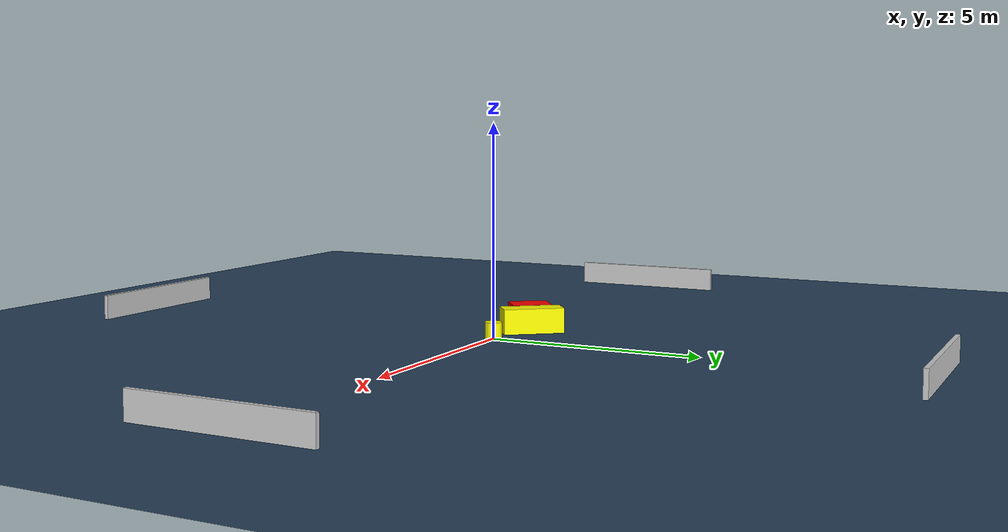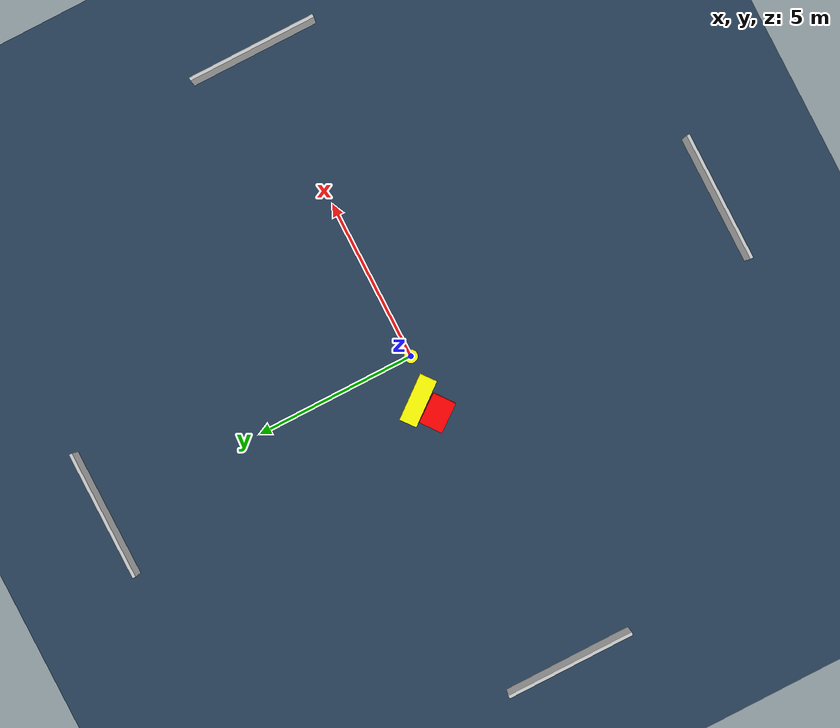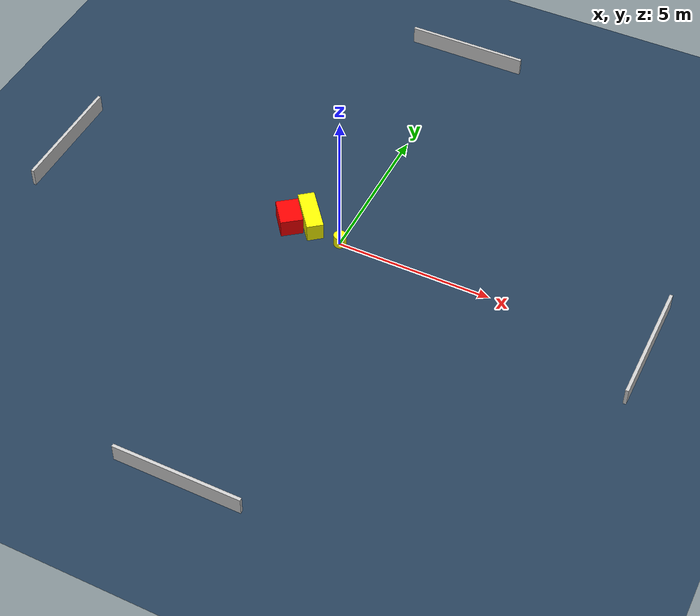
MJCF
<?xml version="1.0" ?>
<mujoco model="generated_environment">
  <option timestep="0.01" integrator="RK4" cone="elliptic"/>
  <default>
    <geom density="1"/>
  </default>
  <asset>
    <texture builtin="gradient" height="3072" name="skybox" rgb1="0.3 0.5 0.7" rgb2="0 0 0" type="skybox" width="512"/>
    <texture builtin="checker" height="300" name="groundplane" rgb1="0.2 0.3 0.4" rgb2="0.1 0.2 0.3" type="2d" width="300"/>
    <material name="groundplane" reflectance="0.2" texrepeat="5 5" texture="groundplane"/>
  </asset>
  <worldbody>
    <light dir="0 0 -1" directional="true" pos="0 0 1.5"/>
    <geom condim="3" friction="0.5 0.005 0.001" material="groundplane" name="floor" pos="0 0 0" size="0 0 0.05" type="plane"/>
    <body name="walls">
      <geom name="wall_1" condim="4" pos="-10.0 0.0 0.3" rgba="0.800000011920929 0.800000011920929 0.800000011920929 1.0" size="0.05 2.0 0.3" type="box"/>
      <geom name="wall_2" condim="4" pos="10.0 0.0 0.3" rgba="0.800000011920929 0.800000011920929 0.800000011920929 1.0" size="0.05 2.0 0.3" type="box"/>
      <geom name="wall_3" condim="4" pos="0.0 -10.0 0.3" rgba="0.800000011920929 0.800000011920929 0.800000011920929 1.0" size="2.0 0.05 0.3" type="box"/>
      <geom name="wall_4" condim="4" pos="0.0 10.0 0.3" rgba="0.800000011920929 0.800000011920929 0.800000011920929 1.0" size="2.0 0.05 0.3" type="box"/>
    </body>
    <body name="robot">
      <joint name="joint_x" type="slide" pos="0 0 0" axis="1 0 0"/>
      <joint name="joint_y" type="slide" pos="0 0 0" axis="0 1 0"/>
      <geom name="robot" type="cylinder" pos="0.0 0.0 0.2" size="0.2 0.2 0.0" mass="5.0" friction="1.0 0.005 0.0001" condim="4" rgba="1.0 1.0 0.0 1.0"/>
    </body>
    <body name="obstacle_1_movable">
      <geom name="obstacle_1_movable" condim="4" pos="-1.226299726403676 0.40265365277684956 0.3" euler="0 0 128.43309488796103" friction="0.0 0.005 0.001" rgba="1.0 1.0 0.0 1.0" size="0.7300600883579447 0.26686021924008096 0.3" type="box" mass="0.1"/>
      <joint type="free"/>
    </body>
    <body name="obstacle_2_static">
      <geom name="obstacle_2_static" condim="4" pos="-1.8011131466902297 0.07138004242332953 0.3" euler="0 0 127.20060417875281" friction="0.0 0.005 0.001" rgba="1.0 0.0 0.0 1.0" size="0.4733653029596469 0.3597074914300358 0.3" type="box"/>
    </body>
  </worldbody>
  <actuator>
    <motor name="actuator_x" joint="joint_x" gear="1" ctrlrange="-1 1"/>
    <motor name="actuator_y" joint="joint_y" gear="1" ctrlrange="-1 1"/>
  </actuator>
</mujoco>
